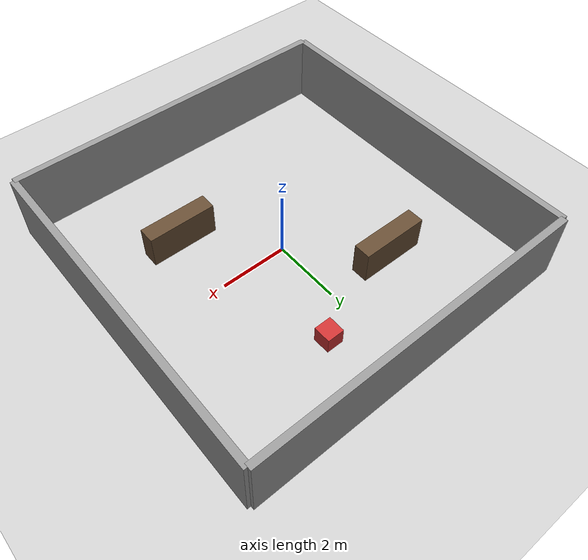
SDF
<?xml version="1.0" ?>
<sdf version="1.6">
  <world name="warehouse">
    <!-- Physics -->
    <physics name="1ms" type="ignored">
      <max_step_size>0.001</max_step_size>
      <real_time_factor>1.0</real_time_factor>
    </physics>
    <plugin
      filename="gz-sim-physics-system"
      name="gz::sim::systems::Physics">
    </plugin>
    <plugin
      filename="gz-sim-scene-broadcaster-system"
      name="gz::sim::systems::SceneBroadcaster">
    </plugin>
    <plugin
      filename="gz-sim-user-commands-system"
      name="gz::sim::systems::UserCommands">
    </plugin>
    <plugin
      filename="gz-sim-imu-system"
      name="gz::sim::systems::Imu">
    </plugin>

    <!-- Scene settings -->
    <scene>
      <ambient>0.4 0.4 0.4 1.0</ambient>
      <background>0.7 0.7 0.7 1.0</background>
      <shadows>true</shadows>
    </scene>

    <!-- Ground plane -->
    <model name="ground_plane">
      <static>true</static>
      <link name="link">
        <collision name="collision">
          <geometry>
            <plane>
              <normal>0 0 1</normal>
              <size>100 100</size>
            </plane>
          </geometry>
        </collision>
        <visual name="visual">
          <geometry>
            <plane>
              <normal>0 0 1</normal>
              <size>100 100</size>
            </plane>
          </geometry>
          <material>
            <ambient>0.8 0.8 0.8 1</ambient>
            <diffuse>0.8 0.8 0.8 1</diffuse>
            <specular>0.8 0.8 0.8 1</specular>
          </material>
        </visual>
      </link>
    </model>

    <!-- Sun -->
    <light type="directional" name="sun">
      <cast_shadows>true</cast_shadows>
      <pose>0 0 10 0 0 0</pose>
      <diffuse>0.8 0.8 0.8 1</diffuse>
      <specular>0.2 0.2 0.2 1</specular>
      <attenuation>
        <range>1000</range>
        <constant>0.9</constant>
        <linear>0.01</linear>
        <quadratic>0.001</quadratic>
      </attenuation>
      <direction>-0.5 0.1 -0.9</direction>
    </light>

    <!-- Warehouse Outer Walls (10m x 10m) -->
    <!-- Wall North -->
    <model name="wall_north">
      <static>true</static>
      <pose>0 5 1.0 0 0 0</pose>
      <link name="link">
        <collision name="collision">
          <geometry>
            <box>
              <size>10 0.2 2.0</size>
            </box>
          </geometry>
        </collision>
        <visual name="visual">
          <geometry>
            <box>
              <size>10 0.2 2.0</size>
            </box>
          </geometry>
          <material>
            <ambient>0.6 0.6 0.6 1</ambient>
            <diffuse>0.6 0.6 0.6 1</diffuse>
          </material>
        </visual>
      </link>
    </model>

    <!-- Wall South -->
    <model name="wall_south">
      <static>true</static>
      <pose>0 -5 1.0 0 0 0</pose>
      <link name="link">
        <collision name="collision">
          <geometry>
            <box>
              <size>10 0.2 2.0</size>
            </box>
          </geometry>
        </collision>
        <visual name="visual">
          <geometry>
            <box>
              <size>10 0.2 2.0</size>
            </box>
          </geometry>
          <material>
            <ambient>0.6 0.6 0.6 1</ambient>
            <diffuse>0.6 0.6 0.6 1</diffuse>
          </material>
        </visual>
      </link>
    </model>

    <!-- Wall East -->
    <model name="wall_east">
      <static>true</static>
      <pose>5 0 1.0 0 0 0</pose>
      <link name="link">
        <collision name="collision">
          <geometry>
            <box>
              <size>0.2 10 2.0</size>
            </box>
          </geometry>
        </collision>
        <visual name="visual">
          <geometry>
            <box>
              <size>0.2 10 2.0</size>
            </box>
          </geometry>
          <material>
            <ambient>0.6 0.6 0.6 1</ambient>
            <diffuse>0.6 0.6 0.6 1</diffuse>
          </material>
        </visual>
      </link>
    </model>

    <!-- Wall West -->
    <model name="wall_west">
      <static>true</static>
      <pose>-5 0 1.0 0 0 0</pose>
      <link name="link">
        <collision name="collision">
          <geometry>
            <box>
              <size>0.2 10 2.0</size>
            </box>
          </geometry>
        </collision>
        <visual name="visual">
          <geometry>
            <box>
              <size>0.2 10 2.0</size>
            </box>
          </geometry>
          <material>
            <ambient>0.6 0.6 0.6 1</ambient>
            <diffuse>0.6 0.6 0.6 1</diffuse>
          </material>
        </visual>
      </link>
    </model>

    <!-- Internal Shelves/Obstacles -->
    <!-- Shelf 1 -->
    <model name="shelf_1">
      <static>true</static>
      <pose>-2 2 0.5 0 0 0</pose>
      <link name="link">
        <collision name="collision">
          <geometry>
            <box>
              <size>2 0.5 1.0</size>
            </box>
          </geometry>
        </collision>
        <visual name="visual">
          <geometry>
            <box>
              <size>2 0.5 1.0</size>
            </box>
          </geometry>
          <material>
            <ambient>0.4 0.3 0.2 1</ambient>
            <diffuse>0.4 0.3 0.2 1</diffuse>
          </material>
        </visual>
      </link>
    </model>

    <!-- Shelf 2 -->
    <model name="shelf_2">
      <static>true</static>
      <pose>2 -2 0.5 0 0 0</pose>
      <link name="link">
        <collision name="collision">
          <geometry>
            <box>
              <size>2 0.5 1.0</size>
            </box>
          </geometry>
        </collision>
        <visual name="visual">
          <geometry>
            <box>
              <size>2 0.5 1.0</size>
            </box>
          </geometry>
          <material>
            <ambient>0.4 0.3 0.2 1</ambient>
            <diffuse>0.4 0.3 0.2 1</diffuse>
          </material>
        </visual>
      </link>
    </model>

    <!-- Box obstacle -->
    <model name="box_1">
      <static>true</static>
      <pose>1 3 0.25 0 0 0</pose>
      <link name="link">
        <collision name="collision">
          <geometry>
            <box>
              <size>0.5 0.5 0.5</size>
            </box>
          </geometry>
        </collision>
        <visual name="visual">
          <geometry>
            <box>
              <size>0.5 0.5 0.5</size>
            </box>
          </geometry>
          <material>
            <ambient>0.8 0.2 0.2 1</ambient>
            <diffuse>0.8 0.2 0.2 1</diffuse>
          </material>
        </visual>
      </link>
    </model>

  </world>
</sdf>
